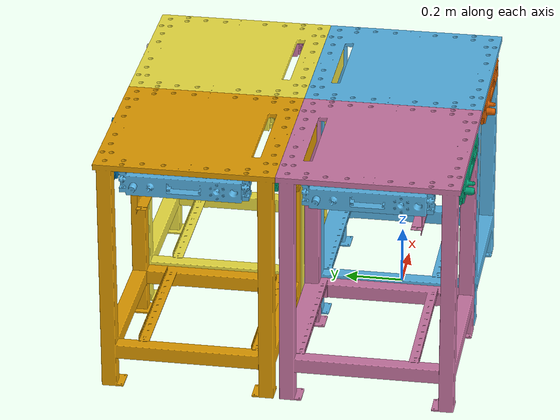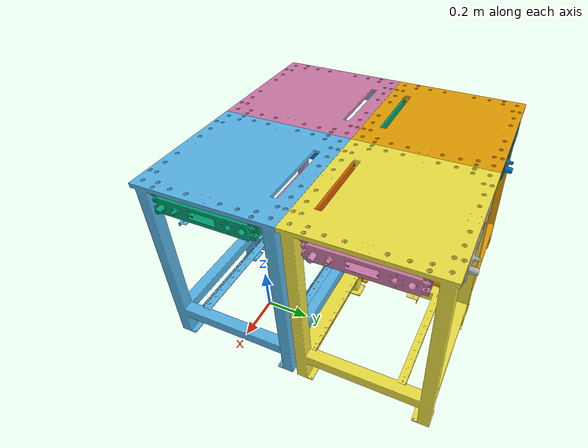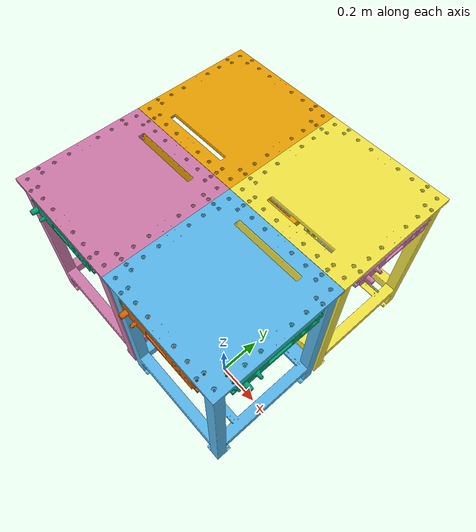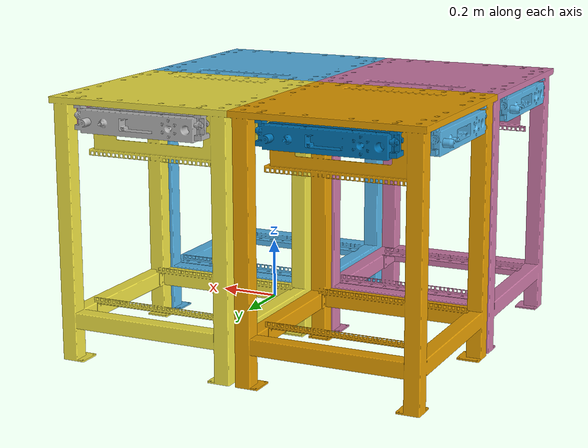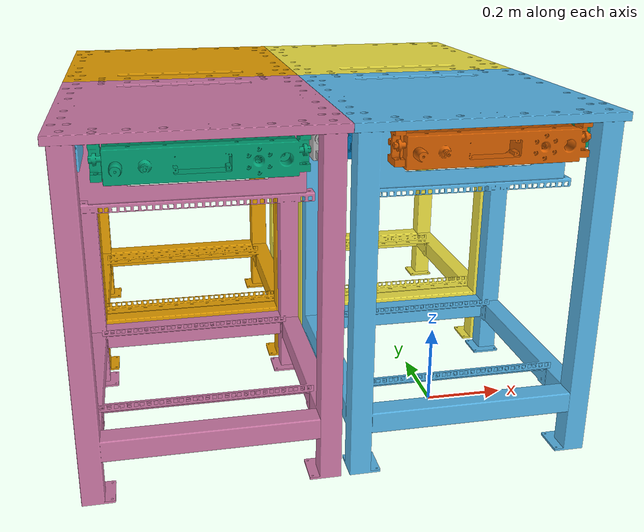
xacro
<?xml version="1.0"?>
<robot xmlns:xacro="http://www.ros.org/wiki/xacro" name="reconcycle" >
    <link name="world"/>

    <!-- Useful parameters -->
    <xacro:include filename="$(find reconcycle_description)/urdf/reconcycle_defaults.xacro" />

    <!-- Reconcycle table -->
    <xacro:include filename="$(find reconcycle_description)/urdf/table_module.xacro" />

    <!-- Tables layout -->
    <xacro:arg name="table_0_name" default="table_rob_1"/>
    <xacro:arg name="table_1_name" default="table_vision"/>
    <xacro:arg name="table_2_name" default="table_cnc"/>
    <xacro:arg name="table_3_name" default="table_rob_2"/>

    <xacro:table_module table_id="$(arg table_0_name)" connected_to="world" xyz="0 0 ${table_height}" rpy="0 0 0"/>
    <xacro:table_module table_id="$(arg table_1_name)" connected_to="$(arg table_0_name)" xyz="-${table_width} 0 0" rpy="0 0 0"/>
    <xacro:table_module table_id="$(arg table_2_name)" connected_to="$(arg table_0_name)" xyz="0 ${table_width} 0" rpy="0 0 3.14159"/>
    <xacro:table_module table_id="$(arg table_3_name)" connected_to="$(arg table_0_name)" xyz="-${table_width} ${table_width} 0" rpy="0 0 3.14159"/>

</robot>

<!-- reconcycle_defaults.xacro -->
<robot xmlns:xacro="http://www.ros.org/wiki/xacro" name="defaults">
<!-- Usefull constants -->
<xacro:property name="table_width" value="0.600" />
<xacro:property name="table_height" value="0.805" />
<xacro:arg name="table_surf_thickness" default="0.02"/>
<xacro:property name="flange_thickness" value="0.01"/>

<xacro:macro name="tc_tool_side" params="tc_id:='tc_tool_1' connected_to:='' xyz:='0 0 0' rpy='0 0 0'">

    <!--  If connected_to is not provided we don't do anything -->
    <xacro:unless value="${not connected_to}">
        <joint name="${tc_id}_joint_${connected_to}" type="fixed">
            <parent link="${connected_to}"/>
            <child link="${tc_id}"/>
            <origin rpy="${rpy}" xyz="${xyz}"/>
        </joint>

        <!-- The tool changer -->
        <link name="${tc_id}">
            <visual>
                <origin rpy="0 0 0" xyz=" 0 0 0 "/>
                <geometry>
                    <mesh filename="package://reconcycle_description/meshes/tc_tool_side.obj" scale="0.001 0.001 0.001"/>
                </geometry>
            </visual>
            <collision>
                <origin rpy="${pi/2} 0 0" xyz="0.0 0.0 0"/>
                <geometry>
                    <mesh filename="package://reconcycle_description/meshes/tc_tool_side.obj" scale ="0.001 0.001 0.001"/>
                </geometry>
            </collision>
            <inertial>
                <origin xyz="0 0 0" rpy="0 0 0"/>
                <mass value="0.100"/>
                <inertia ixx="0.1" ixy="0.0" ixz="0.0" iyy="0.1" iyz="0.0" izz="0.1"/>
            </inertial>
        </link>
    </xacro:unless>
</xacro:macro>

<xacro:macro name="tc_robot_side" params="tc_id:='tc_robot_1' connected_to:='' xyz:='0 0 0' rpy='0 0 0'">

    <!--  If connected_to is not provided we don't do anything -->
    <xacro:unless value="${not connected_to}">
        <joint name="${tc_id}_joint_${connected_to}" type="fixed">
            <parent link="${connected_to}"/>
            <child link="${tc_id}"/>
            <origin rpy="${rpy}" xyz="${xyz}"/>
            <dynamics damping="1"/>
        </joint>

        <!-- The tool changer -->
        <link name="${tc_id}">
            <visual>
                <origin rpy="${-pi/2} 0 0" xyz=" 0 0 0 "/>
                <geometry>
                    <mesh filename="package://reconcycle_description/meshes/tc_robot_side.obj" scale="0.001 0.001 0.001"/>
                </geometry>
            </visual>
            <collision>
                <origin rpy="${-pi/2} 0 0" xyz="0.0 0.0 0"/>
                <geometry>
                    <mesh filename="package://reconcycle_description/meshes/tc_robot_side.obj" scale ="0.001 0.001 0.001"/>
                </geometry>
            </collision>
            <inertial>
                <origin xyz="0 0 0" rpy="0 0 0"/>
                <mass value="0.160"/>
                <inertia ixx="0.160" ixy="0.0" ixz="0.0" iyy="0.160" iyz="0.0" izz="0.160"/>
            </inertial>
        </link>
    </xacro:unless>
</xacro:macro>

<!-- Robot flange -->
<xacro:macro name="flange" params="flange_id:='flange' connected_to:='' xyz:='0 0 0' rpy='0 0 0'">

    <!--  If connected_to is not provided we don't do anything -->
    <xacro:unless value="${not connected_to}">
        <joint name="${flange_id}_joint_${connected_to}" type="fixed">
            <parent link="${connected_to}"/>
            <child link="${flange_id}"/>
            <origin rpy="${rpy}" xyz="${xyz}"/>
            <dynamics damping="1"/>
        </joint>

        <!-- The tool changer -->
        <link name="${flange_id}">
            <visual>
                <origin rpy="${pi/2} 0 0" xyz=" 0 0 0 "/>
                <geometry>
                    <mesh filename="package://reconcycle_description/meshes/flange.obj" scale="0.001 0.001 0.001"/>
                </geometry>
            </visual>
            <collision>
                <origin rpy="${pi/2} 0 0" xyz="0.0 0.0 0"/>
                <geometry>
                    <mesh filename="package://reconcycle_description/meshes/flange.obj" scale ="0.001 0.001 0.001"/>
                </geometry>
            </collision>
            <inertial>
                <origin xyz="0 0 0" rpy="0 0 0"/>
                <mass value="0.07"/>
                <inertia ixx="0.07" ixy="0.0" ixz="0.0" iyy="0.07" iyz="0.0" izz="0.07"/>
            </inertial>
        </link>
    </xacro:unless>
</xacro:macro>

<xacro:macro name="vise_setup" params="vise_id:='vise' connected_to:='' xyz:='0 0 0' rpy='0 0 0'">

    <!--  If connected_to is not provided we don't do anything -->
    <xacro:unless value="${not connected_to}">
        <joint name="${vise_id}_joint_${connected_to}" type="fixed">
            <parent link="${connected_to}"/>
            <child link="${vise_id}"/>
            <origin rpy="${rpy}" xyz="${xyz}"/>
            <dynamics damping="1"/>
        </joint>

        <!-- The vise -->
        <link name="${vise_id}">
            <visual>
                <origin rpy="${pi/2} 0 0" xyz=" 0 0 0 "/>
                <geometry>
                    <mesh filename="package://reconcycle_description/meshes/vise_setup.obj" scale="0.001 0.001 0.001"/>
                </geometry>
            </visual>
            <collision>
                <origin rpy="${pi/2} 0 0" xyz="0.0 0.0 0"/>
                <geometry>
                    <mesh filename="package://reconcycle_description/meshes/vise_setup.obj" scale ="0.001 0.001 0.001"/>
                </geometry>
            </collision>
            <inertial>
                <origin xyz="0 0 0" rpy="0 0 0"/>
                <mass value="3"/>
                <inertia ixx="3.0" ixy="0.0" ixz="0.0" iyy="3.0" iyz="0.0" izz="3.0"/>
            </inertial>
        </link>
    </xacro:unless>
</xacro:macro>

<xacro:macro name="vise_setup_v2" params="vise_id:='vise' connected_to:='' xyz:='0 0 0' rpy='0 0 0'">

    <!--  If connected_to is not provided we don't do anything -->
    <xacro:unless value="${not connected_to}">
        <joint name="${vise_id}_joint_${connected_to}" type="fixed">
            <parent link="${connected_to}"/>
            <child link="${vise_id}"/>
            <origin rpy="${rpy}" xyz="${xyz}"/>
            <dynamics damping="1"/>
        </joint>

        <!-- The vise -->
        <link name="${vise_id}">
            <visual>
                <origin rpy="${pi/2} 0 0" xyz=" 0 0 0 "/>
                <geometry>
                    <mesh filename="package://reconcycle_description/meshes/vise_setup_v2.obj" scale="0.001 0.001 0.001"/>
                </geometry>
            </visual>
            <collision>
                <origin rpy="${pi/2} 0 0" xyz="0.0 0.0 0"/>
                <geometry>
                    <mesh filename="package://reconcycle_description/meshes/vise_setup_v2.obj" scale ="0.001 0.001 0.001"/>
                </geometry>
            </collision>
            <inertial>
                <origin xyz="0 0 0" rpy="0 0 0"/>
                <mass value="3"/>
                <inertia ixx="3.0" ixy="0.0" ixz="0.0" iyy="3.0" iyz="0.0" izz="3.0"/>
            </inertial>
        </link>
    </xacro:unless>
</xacro:macro>

<xacro:macro name="cutter_model" params="cutter_id:='cutter' connected_to:='' xyz:='0 0 0' rpy='0 0 0'">

    <!--  If connected_to is not provided we don't do anything -->
    <xacro:unless value="${not connected_to}">
        <joint name="${cutter_id}_joint_${connected_to}" type="fixed">
            <parent link="${connected_to}"/>
            <child link="${cutter_id}"/>
            <origin rpy="${rpy}" xyz="${xyz}"/>
            <dynamics damping="1"/>
        </joint>

        <!-- The vise -->
        <link name="${cutter_id}">
            <visual>
                <origin rpy="${pi/2} 0 0" xyz=" 0 0 0 "/>
                <geometry>
                    <mesh filename="package://reconcycle_description/meshes/cutter_setup.obj" scale="0.001 0.001 0.001"/>
                </geometry>
            </visual>
            <collision>
                <origin rpy="${pi/2} 0 0" xyz="0.0 0.0 0"/>
                <geometry>
                    <mesh filename="package://reconcycle_description/meshes/cutter_setup.obj" scale ="0.001 0.001 0.001"/>
                </geometry>
            </collision>
            <inertial>
                <origin xyz="0 0 0" rpy="0 0 0"/>
                <mass value="3"/>
                <inertia ixx="3.0" ixy="0.0" ixz="0.0" iyy="3.0" iyz="0.0" izz="3.0"/>
            </inertial>
        </link>
    </xacro:unless>
</xacro:macro>

<xacro:macro name="tool_model" params="tool_id:='tool' connected_to:='' xyz:='0 0 0' rpy='0 0 0'">

    <!--  If connected_to is not provided we don't do anything -->
    <xacro:unless value="${not connected_to}">
        <joint name="${tool_id}_joint_${connected_to}" type="fixed">
            <parent link="${connected_to}"/>
            <child link="${tool_id}"/>
            <origin rpy="${rpy}" xyz="${xyz}"/>
            <dynamics damping="1"/>
        </joint>

        <!-- The vise -->
        <link name="${tool_id}">
            <visual>
                <origin rpy="${pi/2} 0 0" xyz=" 0 0 0 "/>
                <geometry>
                    <mesh filename="package://reconcycle_description/meshes/toolholder_setup.obj" scale="0.001 0.001 0.001"/>
                </geometry>
            </visual>
            <collision>
                <origin rpy="${pi/2} 0 0" xyz="0.0 0.0 0"/>
                <geometry>
                    <mesh filename="package://reconcycle_description/meshes/toolholder_setup.obj" scale ="0.001 0.001 0.001"/>
                </geometry>
            </collision>
            <inertial>
                <origin xyz="0 0 0" rpy="0 0 0"/>
                <mass value="3"/>
                <inertia ixx="3.0" ixy="0.0" ixz="0.0" iyy="3.0" iyz="0.0" izz="3.0"/>
            </inertial>
        </link>
    </xacro:unless>
</xacro:macro>

<xacro:macro name="tool_frame_1" params="tool_id:='tool_frame_1' connected_to:='' xyz:='0.0 0.0 0.0' rpy='0 0 0'">

    <!--  If connected_to is not provided we don't do anything -->
    <xacro:unless value="${not connected_to}">
        <joint name="${tool_id}_joint_${connected_to}" type="fixed">
            <parent link="${connected_to}"/>
            <child link="${tool_id}"/>
            <origin rpy="${rpy}" xyz="${xyz}"/>
            <dynamics damping="1"/>
        </joint>

        <!-- The vise -->
        <link name="${tool_id}">
            <visual>
                <origin rpy="${pi/2} 0 0" xyz=" 0 0 0 "/>
                <geometry>
                    <mesh filename="package://reconcycle_description/meshes/EmptyCubeFrame.obj" scale="0.001 0.001 0.001"/>
                </geometry>
            </visual>
            <collision>
                <origin rpy="${pi/2} 0 0" xyz="0.0 0.0 0"/>
                <geometry>
                    <mesh filename="package://reconcycle_description/meshes/EmptyCubeFrame.obj" scale ="0.001 0.001 0.001"/>
                </geometry>
            </collision>
            <inertial>
                <origin xyz="0 0 0" rpy="0 0 0"/>
                <mass value="3"/>
                <inertia ixx="3.0" ixy="0.0" ixz="0.0" iyy="3.0" iyz="0.0" izz="3.0"/>
            </inertial>
        </link>
    </xacro:unless>
</xacro:macro>

<xacro:macro name="tool_frame_2" params="tool_id:='tool_frame_2' connected_to:='' xyz:='0.0 0.0 0.0' rpy='0 0 0'">

    <!--  If connected_to is not provided we don't do anything -->
    <xacro:unless value="${not connected_to}">
        <joint name="${tool_id}_joint_${connected_to}" type="fixed">
            <parent link="${connected_to}"/>
            <child link="${tool_id}"/>
            <origin rpy="${rpy}" xyz="${xyz}"/>
            <dynamics damping="1"/>
        </joint>

        <!-- The vise -->
        <link name="${tool_id}">
            <visual>
                <origin rpy="${pi/2} 0 0" xyz=" 0 0 0 "/>
                <geometry>
                    <mesh filename="package://reconcycle_description/meshes/EmptyCubeFrame.obj" scale="0.001 0.001 0.001"/>
                </geometry>
            </visual>
            <collision>
                <origin rpy="${pi/2} 0 0" xyz="0.0 0.0 0"/>
                <geometry>
                    <mesh filename="package://reconcycle_description/meshes/EmptyCubeFrame.obj" scale ="0.001 0.001 0.001"/>
                </geometry>
            </collision>
            <inertial>
                <origin xyz="0 0 0" rpy="0 0 0"/>
                <mass value="3"/>
                <inertia ixx="3.0" ixy="0.0" ixz="0.0" iyy="3.0" iyz="0.0" izz="3.0"/>
            </inertial>
        </link>
    </xacro:unless>
</xacro:macro>

<xacro:macro name="tool_frame_3" params="tool_id:='tool_frame_3' connected_to:='' xyz:='0.0 0.0 0.0' rpy='0 0 0'">

    <!--  If connected_to is not provided we don't do anything -->
    <xacro:unless value="${not connected_to}">
        <joint name="${tool_id}_joint_${connected_to}" type="fixed">
            <parent link="${connected_to}"/>
            <child link="${tool_id}"/>
            <origin rpy="${rpy}" xyz="${xyz}"/>
            <dynamics damping="1"/>
        </joint>

        <!-- The vise -->
        <link name="${tool_id}">
            <visual>
                <origin rpy="${pi/2} 0 0" xyz=" 0 0 0 "/>
                <geometry>
                    <mesh filename="package://reconcycle_description/meshes/EmptyCubeFrame.obj" scale="0.001 0.001 0.001"/>
                </geometry>
            </visual>
            <collision>
                <origin rpy="${pi/2} 0 0" xyz="0.0 0.0 0"/>
                <geometry>
                    <mesh filename="package://reconcycle_description/meshes/EmptyCubeFrame.obj" scale ="0.001 0.001 0.001"/>
                </geometry>
            </collision>
            <inertial>
                <origin xyz="0 0 0" rpy="0 0 0"/>
                <mass value="3"/>
                <inertia ixx="3.0" ixy="0.0" ixz="0.0" iyy="3.0" iyz="0.0" izz="3.0"/>
            </inertial>
        </link>
    </xacro:unless>
</xacro:macro>

<xacro:macro name="tool_frame_4" params="tool_id:='tool_frame_4' connected_to:='' xyz:='0.0 0.0 0.0' rpy='0 0 0'">

    <!--  If connected_to is not provided we don't do anything -->
    <xacro:unless value="${not connected_to}">
        <joint name="${tool_id}_joint_${connected_to}" type="fixed">
            <parent link="${connected_to}"/>
            <child link="${tool_id}"/>
            <origin rpy="${rpy}" xyz="${xyz}"/>
            <dynamics damping="1"/>
        </joint>

        <!-- The vise -->
        <link name="${tool_id}">
            <visual>
                <origin rpy="${pi/2} 0 0" xyz=" 0 0 0 "/>
                <geometry>
                    <mesh filename="package://reconcycle_description/meshes/EmptyCubeFrame.obj" scale="0.001 0.001 0.001"/>
                </geometry>
            </visual>
            <collision>
                <origin rpy="${pi/2} 0 0" xyz="0.0 0.0 0"/>
                <geometry>
                    <mesh filename="package://reconcycle_description/meshes/EmptyCubeFrame.obj" scale ="0.001 0.001 0.001"/>
                </geometry>
            </collision>
            <inertial>
                <origin xyz="0 0 0" rpy="0 0 0"/>
                <mass value="3"/>
                <inertia ixx="3.0" ixy="0.0" ixz="0.0" iyy="3.0" iyz="0.0" izz="3.0"/>
            </inertial>
        </link>
    </xacro:unless>
</xacro:macro>

<xacro:macro name="vise_base" params="vise_id:='vise_base' connected_to:='' xyz:='0 0 0' rpy='0 0 0'">

    <!--  If connected_to is not provided we don't do anything -->
    <xacro:unless value="${not connected_to}">
        <joint name="${vise_id}_joint_${connected_to}" type="fixed">
            <parent link="${connected_to}"/>
            <child link="${vise_id}"/>
            <origin rpy="${rpy}" xyz="${xyz}"/>
            <dynamics damping="1"/>
        </joint>

        <!-- The vise -->
        <link name="${vise_id}">
            <visual>
                <origin rpy="${pi/2} 0 0" xyz=" 0 0 0 "/>
                <geometry>
                    <mesh filename="package://reconcycle_description/meshes/vise_base.obj" scale="0.001 0.001 0.001"/>
                </geometry>
            </visual>
            <collision>
                <origin rpy="${pi/2} 0 0" xyz="0.0 0.0 0"/>
                <geometry>
                    <mesh filename="package://reconcycle_description/meshes/vise_base.obj" scale ="0.001 0.001 0.001"/>
                </geometry>
            </collision>
            <inertial>
                <origin xyz="0 0 0" rpy="0 0 0"/>
                <mass value="3"/>
                <inertia ixx="3.0" ixy="0.0" ixz="0.0" iyy="3.0" iyz="0.0" izz="3.0"/>
            </inertial>
        </link>
    </xacro:unless>
</xacro:macro>

<xacro:macro name="cutter_base" params="cutter_id:='cutter_base' connected_to:='' xyz:='0 0 0' rpy='0 0 0'">

    <!--  If connected_to is not provided we don't do anything -->
    <xacro:unless value="${not connected_to}">
        <joint name="${cutter_id}_joint_${connected_to}" type="fixed">
            <parent link="${connected_to}"/>
            <child link="${cutter_id}"/>
            <origin rpy="${rpy}" xyz="${xyz}"/>
            <dynamics damping="1"/>
        </joint>

        <!-- The vise -->
        <link name="${cutter_id}">
            <visual>
                <origin rpy="${pi/2} 0 0" xyz=" 0 0 0 "/>
                <geometry>
                    <mesh filename="package://reconcycle_description/meshes/pneumatic_cutter_base.obj" scale="0.001 0.001 0.001"/>
                </geometry>
            </visual>
            <collision>
                <origin rpy="${pi/2} 0 0" xyz="0.0 0.0 0"/>
                <geometry>
                    <mesh filename="package://reconcycle_description/meshes/pneumatic_cutter_base.obj" scale ="0.001 0.001 0.001"/>
                </geometry>
            </collision>
            <inertial>
                <origin xyz="0 0 0" rpy="0 0 0"/>
                <mass value="3"/>
                <inertia ixx="3.0" ixy="0.0" ixz="0.0" iyy="3.0" iyz="0.0" izz="3.0"/>
            </inertial>
        </link>
    </xacro:unless>
</xacro:macro>
</robot>

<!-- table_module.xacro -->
<robot xmlns:xacro="http://www.ros.org/wiki/xacro" name="table_module">
<xacro:macro name="table_module" params="table_id:='table' connected_to:='' xyz:='' rpy:=''">

    <xacro:unless value="${not connected_to}">
      <joint name="${table_id}_joint_${connected_to}" type="fixed">
        <parent link="${connected_to}"/>
        <child link="${table_id}"/>
        <xacro:unless value="${not xyz}">
            <origin rpy="${rpy}" xyz="${xyz}"/>
        </xacro:unless>
        <xacro:if value="${not xyz}">
            <origin rpy="0 0 0" xyz="0 0 0"/>
        </xacro:if>
      </joint>
    </xacro:unless>

    <!-- The table -->
    <link name="${table_id}">
        <visual>
            <origin rpy="${pi/2} 0 0" xyz=" 0 0 0 "/>
            <geometry>
                <mesh filename="package://reconcycle_description/meshes/table.obj" scale="0.001 0.001 0.001"/>
            </geometry>
        </visual>
        <collision>
            <origin rpy="${pi/2} 0 0" xyz="0.0 0.0 0"/>
            <geometry>
                <mesh filename="package://reconcycle_description/meshes/table.obj" scale="0.001 0.001 0.001"/>
            </geometry>
        </collision>
        <inertial>
            <origin xyz="0 0 0" rpy="0 0 0"/>
            <mass value="20"/>
            <inertia ixx="20" ixy="0.0" ixz="0.0" iyy="20" iyz="0.0" izz="20"/>
        </inertial>
    </link>

    <!-- Add a PNP connector to each side of the table -->
    <link name="${table_id}_pnp_connector_1">
        <visual>
            <origin rpy="${pi/2} 0 ${pi/2}" xyz=" 0 0 0 "/>
            <geometry>
                <mesh filename="package://reconcycle_description/meshes/pnp.obj" scale="0.001 0.001 0.001"/>
            </geometry>
        </visual>
        <collision>
            <origin rpy="${pi/2} 0 ${pi/2}" xyz=" 0 0 0 "/>
            <geometry>
                <mesh filename="package://reconcycle_description/meshes/pnp.obj" scale="0.001 0.001 0.001"/>
            </geometry>
        </collision>
    </link>
    <joint name="${table_id}_pnp_1_joint" type="fixed">
        <origin rpy="0 0 ${0*pi/2}" xyz="0.240 0.0 -0.047"/>
        <parent link="${table_id}"/>
        <child link="${table_id}_pnp_connector_1"/>
    </joint>
    <link name="${table_id}_pnp_connector_2">
        <visual>
            <origin rpy="${pi/2} 0 ${pi/2}" xyz=" 0 0 0 "/>
            <geometry>
                <mesh filename="package://reconcycle_description/meshes/pnp.obj" scale="0.001 0.001 0.001"/>
            </geometry>
        </visual>
        <collision>
            <origin rpy="${pi/2} 0 ${pi/2}" xyz=" 0 0 0 "/>
            <geometry>
                <mesh filename="package://reconcycle_description/meshes/pnp.obj" scale="0.001 0.001 0.001"/>
            </geometry>
        </collision>
    </link>
    <joint name="${table_id}_pnp_2_joint" type="fixed">
        <origin rpy="0 0 ${pi/2}" xyz="0.0 0.240 -0.047"/>
        <parent link="${table_id}"/>
        <child link="${table_id}_pnp_connector_2"/>
    </joint>
    <link name="${table_id}_pnp_connector_3">
        <visual>
            <origin rpy="${pi/2} 0 ${pi/2}" xyz=" 0 0 0 "/>
            <geometry>
                <mesh filename="package://reconcycle_description/meshes/pnp.obj" scale="0.001 0.001 0.001"/>
            </geometry>
        </visual>
        <collision>
            <origin rpy="${pi/2} 0 ${pi/2}" xyz=" 0 0 0 "/>
            <geometry>
                <mesh filename="package://reconcycle_description/meshes/pnp.obj" scale="0.001 0.001 0.001"/>
            </geometry>
        </collision>
    </link>
    <joint name="${table_id}_pnp_3_joint" type="fixed">
        <origin rpy="0 0 ${pi}" xyz="-0.240 0.0 -0.047"/>
        <parent link="${table_id}"/>
        <child link="${table_id}_pnp_connector_3"/>
    </joint>
    <link name="${table_id}_pnp_connector_4">
        <visual>
            <origin rpy="${pi/2} 0 ${pi/2}" xyz=" 0 0 0 "/>
            <geometry>
                <mesh filename="package://reconcycle_description/meshes/pnp.obj" scale="0.001 0.001 0.001"/>
            </geometry>
        </visual>
        <collision>
            <origin rpy="${pi/2} 0 ${pi/2}" xyz=" 0 0 0 "/>
            <geometry>
                <mesh filename="package://reconcycle_description/meshes/pnp.obj" scale="0.001 0.001 0.001"/>
            </geometry>
        </collision>
    </link>
    <joint name="${table_id}_pnp_4_joint" type="fixed">
        <origin rpy="0 0 ${3*pi/2}" xyz="0.0 -0.240 -0.047"/>
        <parent link="${table_id}"/>
        <child link="${table_id}_pnp_connector_4"/>
    </joint>
</xacro:macro>
</robot>
